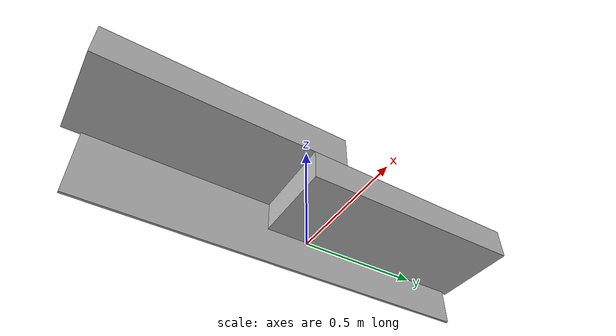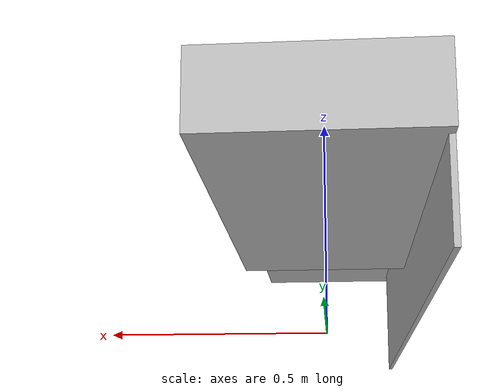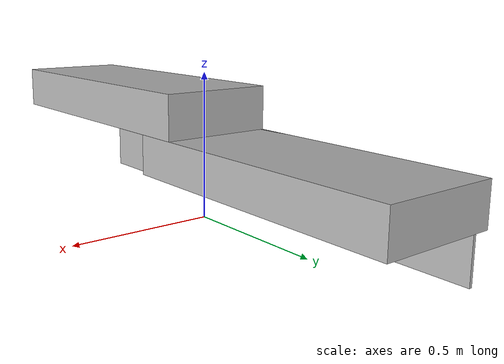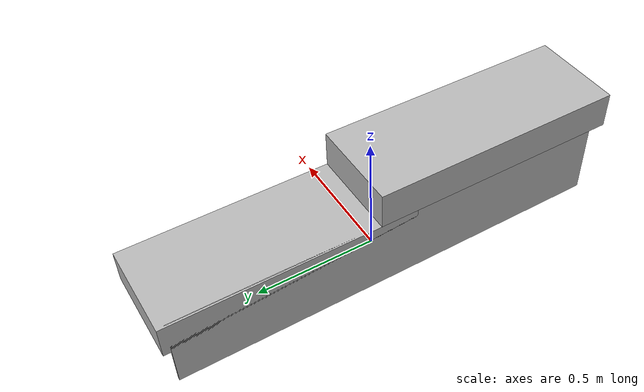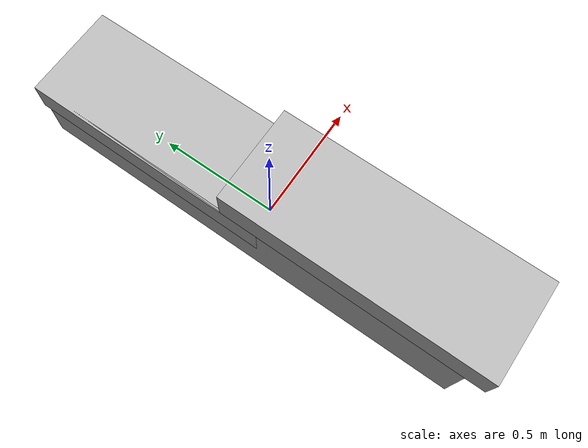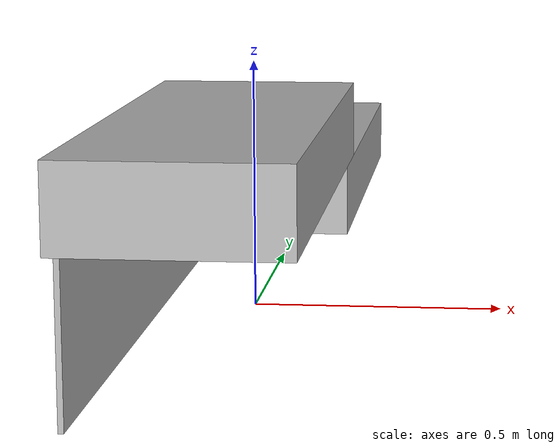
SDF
<?xml version="1.0"?>
<sdf version="1.6">
  <model name="rwc2017/tv_stand">
    <link name="1_link">
      <collision name="1_col">
        <geometry>
          <box>
            <size>0.39 1.01 0.135</size>
          </box>
        </geometry>
      </collision>
      <visual name="1_vis">
        <geometry>
          <box>
            <size>0.39 1.01 0.135</size>
          </box>
        </geometry>
      </visual>
      <pose>0 0.425 0.2325 0 0 0</pose>
    </link>
    <link name="2_link">
      <collision name="2_col">
        <geometry>
          <box>
            <size>0.39 1.05 0.15</size>
          </box>
        </geometry>
      </collision>
      <visual name="2_vis">
        <geometry>
          <box>
            <size>0.39 1.05 0.15</size>
          </box>
        </geometry>
      </visual>
      <pose>0 -0.45 0.375 0 0 0</pose>
    </link>
    <link name="3_link">
      <collision name="3_col">
        <geometry>
          <box>
            <size>0.01 1.8 0.3</size>
          </box>
        </geometry>
      </collision>
      <visual name="3_vis">
        <geometry>
          <box>
            <size>0.01 1.8 0.3</size>
          </box>
        </geometry>
      </visual>
      <pose>-0.19 0.0 0.15 0 0 0</pose>
    </link>
    <link name="in_front_of">
      <virtual_volume name="in_front_of_vv">
        <geometry>
          <box>
            <size>0.3 2.0 0.01</size>
          </box>
        </geometry>
        <pose>0.55 0.0 0.005 0 0 0</pose>
      </virtual_volume>
    </link>
    <static>true</static>
  </model>
</sdf>
